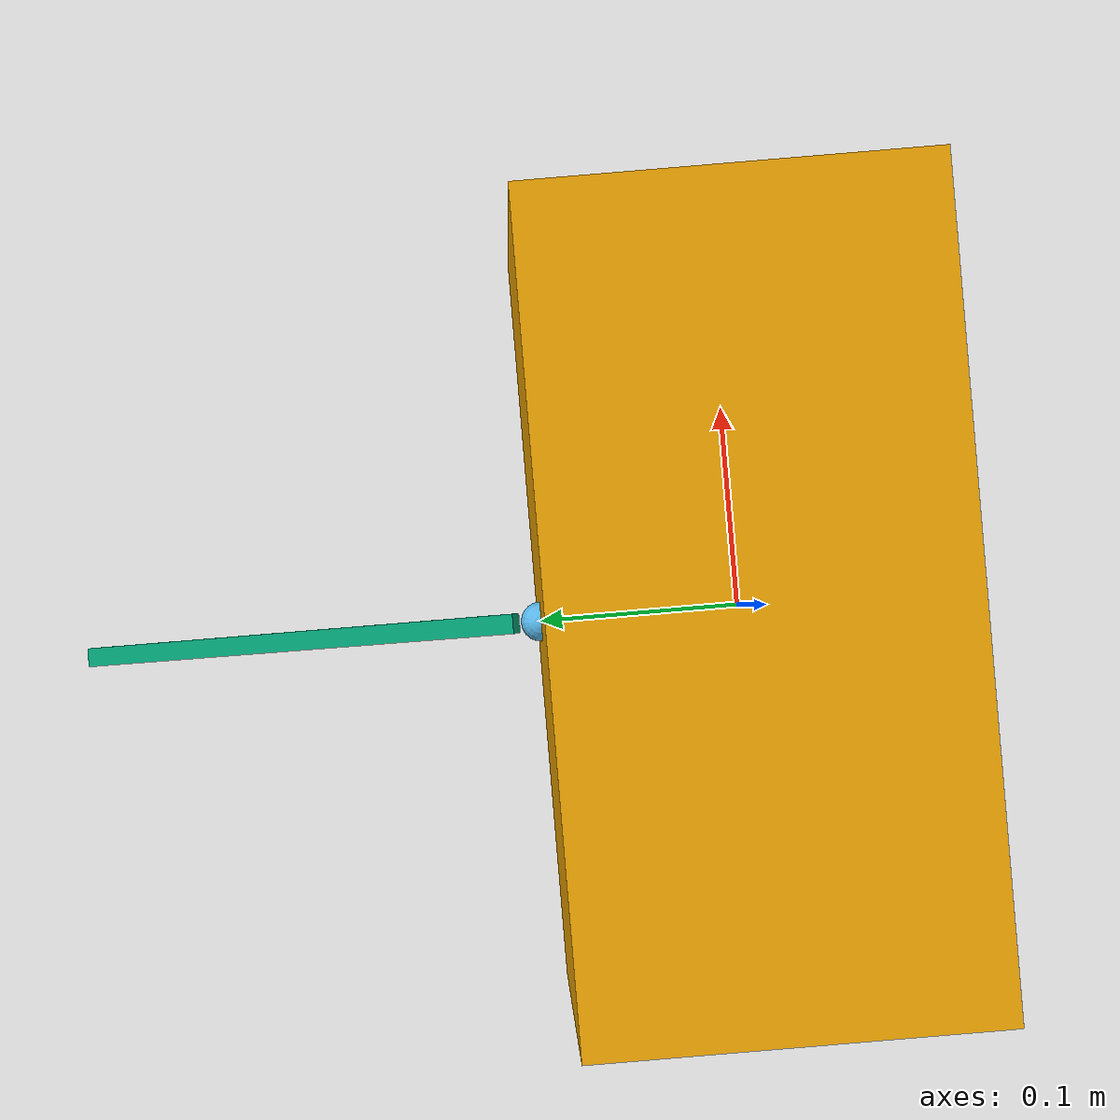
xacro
<?xml version="1.0"?>
<robot name="roboduck" xmlns:xacro="http://www.ros.org/wiki/xacro">
    <!-- Propreties -->
    <xacro:arg name="namespace" default="duck"/>
    <xacro:arg name="debug" default="0"/>

    <xacro:arg name="cog" default="0 0 0"/>
    <xacro:arg name="mass" default="0.01"/>

    <xacro:arg name="ixx" default="0.0015"/>
    <xacro:arg name="iyy" default="0.0015"/>
    <xacro:arg name="izz" default="0.0015"/>
    <xacro:arg name="ixy" default="0.0"/>
    <xacro:arg name="ixz" default="0.0"/>
    <xacro:arg name="iyz" default="0.0"/>

    <xacro:arg name="mesh_filename" default="$(find biped_descriptions)/meshes/tbi.stl"/>

    <!-- Links -->

    <link name="$(arg namespace)/base_link">
        <inertial>
        <origin xyz="0 0 -0.1" rpy="0 0 0" />
        <mass value="$(arg mass)"/>
        <inertia
            ixx="$(arg ixx)" ixy="$(arg ixy)" ixz="$(arg ixz)"
            iyy="$(arg iyy)" iyz="$(arg iyz)"
            izz="$(arg izz)"/>
        </inertial>
        <visual>
            <origin xyz="0 0 0.0" rpy="0 0 0" />
            <geometry>
                <box size="0.4 0.2 0.2"/>
            </geometry>
        </visual>
        <collision>
            <origin xyz="0 0 0" rpy="0 0 0"/>
            <geometry>
                <box size="0.3 0.2 0.5" />
            </geometry>
        </collision>
    </link>

    <!-- Sphere 1 : 2 rotations -->
    <link name="$(arg namespace)/base_to_hip_left">
        <inertial>
        <origin xyz="$(arg cog)" rpy="0 0 0" />
        <mass value="0.001"/>
        <inertia
            ixx="0.0002" ixy="$(arg ixy)" ixz="$(arg ixz)"
            iyy="0.0002" iyz="$(arg iyz)"
            izz="0.0002"/>
        </inertial>
        <visual>
            <origin xyz="0 0 0.0" rpy="0 0 0" />
            <geometry>
                <sphere radius="0.01"/>
            </geometry>
        </visual>
    </link>

    <joint name="$(arg namespace)/hip_joint_left" type="revolute">
        <origin xyz="0.0 0.1 0.0" rpy="0 0 0"/>
        <parent link="$(arg namespace)/base_link"/>
        <child link="$(arg namespace)/base_to_hip_left"/>
        <axis xyz="0 1 1"/>
        <limit effort="3.0" velocity="1.0" lower="-1.0" upper="1.0"/>
    </joint>

     <!-- Femur link -->
    <link name="$(arg namespace)/femur_link_left">
        <inertial>
        <origin xyz="$(arg cog)" rpy="0 0 0" />
        <mass value="0.001"/>
        <inertia
            ixx="0.0002" ixy="$(arg ixy)" ixz="$(arg ixz)"
            iyy="0.0002" iyz="$(arg iyz)"
            izz="0.0002"/>
        </inertial>
        <visual>
            <origin xyz="0.0 0.0 0.0" rpy="0 0 0" />
            <geometry>
                <box size="0.01 0.25 0.01"/>
            </geometry>
        </visual>
    </link>

    <joint name="$(arg namespace)/to_hip_joint_left" type="prismatic">
        <origin xyz="0.0 0.13 -0.04" rpy="-0.35 0 0"/>
        <parent link="$(arg namespace)/base_to_hip_left"/>
        <child link="$(arg namespace)/femur_link_left"/>
        <axis xyz="0 0 0"/>
        <limit effort="0.0" velocity="0.0" lower="0.0" upper="0.0"/>
    </joint>

    <transmission name="_hip_joint_trans">
        <type>transmission_interface/SimpleTransmission</type>
        <joint name="motor_hip">
            <hardwareInterface>hardware_interface/EffortJointInterface</hardwareInterface>
        </joint>
        <actuator name="_hip_joint_motor">
            <hardwareInterface>hardware_interface/EffortJointInterface</hardwareInterface>
            <mechanicalReduction>1</mechanicalReduction>
        </actuator>
    </transmission>

</robot>
